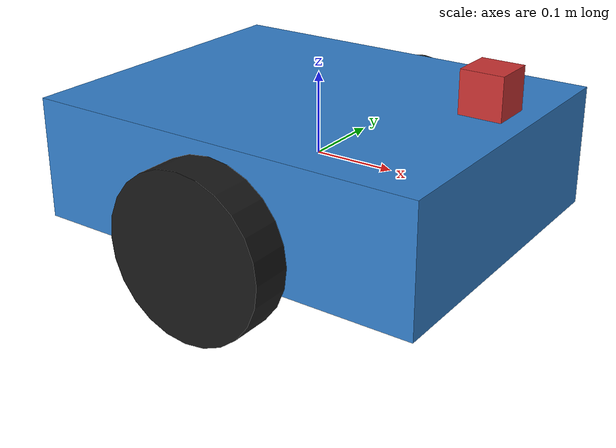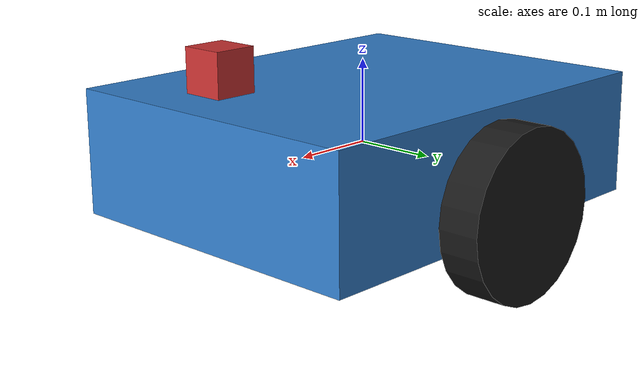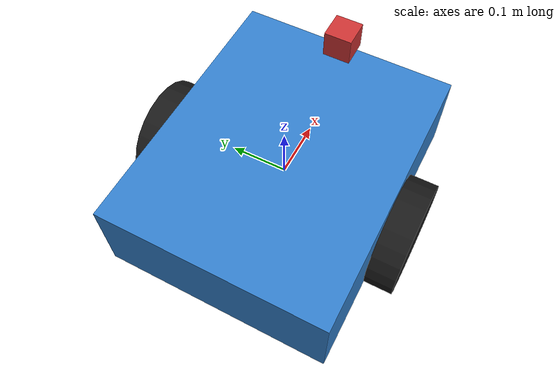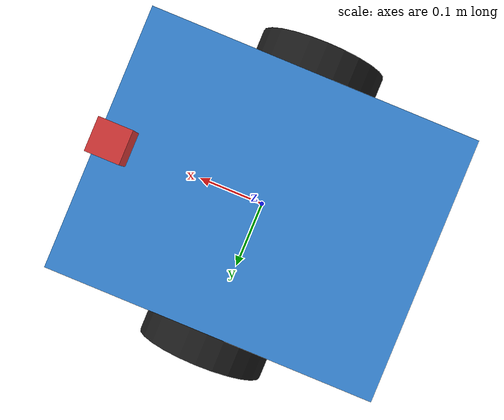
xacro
<?xml version="1.0"?>
<robot xmlns:xacro="http://www.ros.org/wiki/xacro" name="diff_drive_robot">

  <!-- ==================== PROPERTIES ==================== -->
  <xacro:property name="base_width" value="0.4"/>
  <xacro:property name="base_length" value="0.5"/>
  <xacro:property name="base_height" value="0.15"/>
  <xacro:property name="wheel_radius" value="0.10"/>
  <xacro:property name="wheel_width" value="0.05"/>
  <xacro:property name="wheel_ygap" value="0.025"/>
  <xacro:property name="wheel_zoff" value="-0.04"/>
  <xacro:property name="caster_radius" value="0.06"/>
  <xacro:property name="caster_zoff" value="-0.08"/>
  <xacro:property name="base_mass" value="5.0"/>
  <xacro:property name="wheel_mass" value="0.5"/>
  <xacro:property name="caster_mass" value="0.1"/>
  <xacro:property name="camera_size" value="0.05"/>
  <xacro:property name="camera_mass" value="0.1"/>
  <xacro:property name="camera_xoff" value="0.22"/>
  <xacro:property name="camera_zoff" value="0.12"/>

  <!-- ==================== INERTIA MACROS ==================== -->
  <xacro:macro name="box_inertia" params="m w h d">
    <inertial>
      <origin xyz="0 0 0" rpy="0 0 0"/>
      <mass value="${m}"/>
      <inertia ixx="${(m/12) * (h*h + d*d)}" ixy="0.0" ixz="0.0"
               iyy="${(m/12) * (w*w + d*d)}" iyz="0.0"
               izz="${(m/12) * (w*w + h*h)}"/>
    </inertial>
  </xacro:macro>

  <xacro:macro name="cylinder_inertia" params="m r h">
    <inertial>
      <origin xyz="0 0 0" rpy="0 0 0"/>
      <mass value="${m}"/>
      <inertia ixx="${(m/12) * (3*r*r + h*h)}" ixy="0.0" ixz="0.0"
               iyy="${(m/12) * (3*r*r + h*h)}" iyz="0.0"
               izz="${(m/2) * (r*r)}"/>
    </inertial>
  </xacro:macro>

  <xacro:macro name="sphere_inertia" params="m r">
    <inertial>
      <origin xyz="0 0 0" rpy="0 0 0"/>
      <mass value="${m}"/>
      <inertia ixx="${(2/5)*m*r*r}" ixy="0.0" ixz="0.0"
               iyy="${(2/5)*m*r*r}" iyz="0.0"
               izz="${(2/5)*m*r*r}"/>
    </inertial>
  </xacro:macro>

  <!-- ==================== BASE LINK ==================== -->
  <link name="base_link">
    <visual>
      <origin xyz="0 0 0" rpy="0 0 0"/>
      <geometry>
        <box size="${base_length} ${base_width} ${base_height}"/>
      </geometry>
      <material name="blue">
        <color rgba="0.2 0.5 0.8 1.0"/>
      </material>
    </visual>
    <collision>
      <origin xyz="0 0 0" rpy="0 0 0"/>
      <geometry>
        <box size="${base_length} ${base_width} ${base_height}"/>
      </geometry>
    </collision>
    <xacro:box_inertia m="${base_mass}" w="${base_width}" h="${base_height}" d="${base_length}"/>
  </link>

  <!-- ==================== LEFT WHEEL ==================== -->
  <link name="left_wheel">
    <visual>
      <origin xyz="0 0 0" rpy="${pi/2} 0 0"/>
      <geometry>
        <cylinder radius="${wheel_radius}" length="${wheel_width}"/>
      </geometry>
      <material name="black">
        <color rgba="0.1 0.1 0.1 1.0"/>
      </material>
    </visual>
    <collision>
      <origin xyz="0 0 0" rpy="${pi/2} 0 0"/>
      <geometry>
        <cylinder radius="${wheel_radius}" length="${wheel_width}"/>
      </geometry>
    </collision>
    <xacro:cylinder_inertia m="${wheel_mass}" r="${wheel_radius}" h="${wheel_width}"/>
  </link>

  <joint name="left_wheel_joint" type="continuous">
    <parent link="base_link"/>
    <child link="left_wheel"/>
    <origin xyz="0 ${base_width/2 + wheel_ygap} ${wheel_zoff}" rpy="0 0 0"/>
    <axis xyz="0 1 0"/>
  </joint>

  <!-- ==================== RIGHT WHEEL ==================== -->
  <link name="right_wheel">
    <visual>
      <origin xyz="0 0 0" rpy="${pi/2} 0 0"/>
      <geometry>
        <cylinder radius="${wheel_radius}" length="${wheel_width}"/>
      </geometry>
      <material name="black"/>
    </visual>
    <collision>
      <origin xyz="0 0 0" rpy="${pi/2} 0 0"/>
      <geometry>
        <cylinder radius="${wheel_radius}" length="${wheel_width}"/>
      </geometry>
    </collision>
    <xacro:cylinder_inertia m="${wheel_mass}" r="${wheel_radius}" h="${wheel_width}"/>
  </link>

  <joint name="right_wheel_joint" type="continuous">
    <parent link="base_link"/>
    <child link="right_wheel"/>
    <origin xyz="0 ${-base_width/2 - wheel_ygap} ${wheel_zoff}" rpy="0 0 0"/>
    <axis xyz="0 1 0"/>
  </joint>

  <!-- ==================== CASTER WHEEL ==================== -->
  <link name="caster">
    <visual>
      <origin xyz="0 0 0" rpy="0 0 0"/>
      <geometry>
        <sphere radius="${caster_radius}"/>
      </geometry>
      <material name="grey">
        <color rgba="0.5 0.5 0.5 1.0"/>
      </material>
    </visual>
    <collision>
      <origin xyz="0 0 0" rpy="0 0 0"/>
      <geometry>
        <sphere radius="${caster_radius}"/>
      </geometry>
    </collision>
    <xacro:sphere_inertia m="${caster_mass}" r="${caster_radius}"/>
  </link>

  <joint name="caster_joint" type="fixed">
    <parent link="base_link"/>
    <child link="caster"/>
    <origin xyz="${-base_length/4} 0 ${caster_zoff}" rpy="0 0 0"/>
  </joint>

  <!-- ==================== CAMERA LINK ==================== -->
  <link name="camera_link">
    <visual>
      <origin xyz="0 0 0" rpy="0 0 0"/>
      <geometry>
        <box size="${camera_size} ${camera_size} ${camera_size}"/>
      </geometry>
      <material name="red">
        <color rgba="0.8 0.2 0.2 1.0"/>
      </material>
    </visual>
    <collision>
      <origin xyz="0 0 0" rpy="0 0 0"/>
      <geometry>
        <box size="${camera_size} ${camera_size} ${camera_size}"/>
      </geometry>
    </collision>
    <xacro:box_inertia m="${camera_mass}" w="${camera_size}" h="${camera_size}" d="${camera_size}"/>
  </link>

  <joint name="camera_joint" type="fixed">
    <parent link="base_link"/>
    <child link="camera_link"/>
    <origin xyz="${camera_xoff} 0 ${camera_zoff}" rpy="0 0 0"/>
  </joint>

  <!-- Camera optical frame (Z forward for OpenCV convention) -->
  <link name="camera_optical_frame"/>
  <joint name="camera_optical_joint" type="fixed">
    <parent link="camera_link"/>
    <child link="camera_optical_frame"/>
    <origin xyz="0 0 0" rpy="${-pi/2} 0 ${-pi/2}"/>
  </joint>

  <!-- ==================== GAZEBO PLUGINS ==================== -->
  <gazebo reference="base_link">
    <material>Gazebo/Blue</material>
  </gazebo>

  <gazebo reference="left_wheel">
    <material>Gazebo/Black</material>
    <mu1>1.0</mu1>
    <mu2>1.0</mu2>
  </gazebo>

  <gazebo reference="right_wheel">
    <material>Gazebo/Black</material>
    <mu1>1.0</mu1>
    <mu2>1.0</mu2>
  </gazebo>

  <gazebo reference="caster">
    <material>Gazebo/Grey</material>
    <mu1>0.001</mu1>
    <mu2>0.001</mu2>
  </gazebo>

  <gazebo reference="camera_link">
    <material>Gazebo/Red</material>
  </gazebo>

  <!-- Differential Drive Plugin -->
  <gazebo>
    <plugin filename="gz-sim-diff-drive-system" name="gz::sim::systems::DiffDrive">
      <left_joint>left_wheel_joint</left_joint>
      <right_joint>right_wheel_joint</right_joint>
      <wheel_separation>${base_width + 2*wheel_ygap}</wheel_separation>
      <wheel_radius>${wheel_radius}</wheel_radius>
      <odom_publish_frequency>50</odom_publish_frequency>
      <topic>/cmd_vel</topic>
      <odom_topic>/odom</odom_topic>
      <frame_id>odom</frame_id>
      <child_frame_id>base_link</child_frame_id>
      <linear_velocity_max>2.0</linear_velocity_max>
      <angular_velocity_max>4.0</angular_velocity_max>
    </plugin>
  </gazebo>

  <!-- Camera Plugin -->
  <gazebo reference="camera_link">
    <sensor name="camera_sensor" type="camera">
      <camera>
        <horizontal_fov>1.047</horizontal_fov>
        <image>
          <width>640</width>
          <height>480</height>
          <format>R8G8B8</format>
        </image>
        <clip>
          <near>0.1</near>
          <far>100</far>
        </clip>
      </camera>
      <always_on>1</always_on>
      <update_rate>30</update_rate>
      <visualize>true</visualize>
      <topic>/camera/image_raw</topic>
      <camera_info_topic>/camera/camera_info</camera_info_topic>
      <gz_frame_id>camera_optical_frame</gz_frame_id>
    </sensor>
  </gazebo>

  <!-- Odometry to TF bridge -->
  <gazebo>
    <plugin filename="gz-sim-odometry-publisher-system" name="gz::sim::systems::OdometryPublisher">
      <odom_topic>/odom</odom_topic>
      <odom_frame>odom</odom_frame>
      <robot_base_frame>base_link</robot_base_frame>
    </plugin>
  </gazebo>

</robot>
